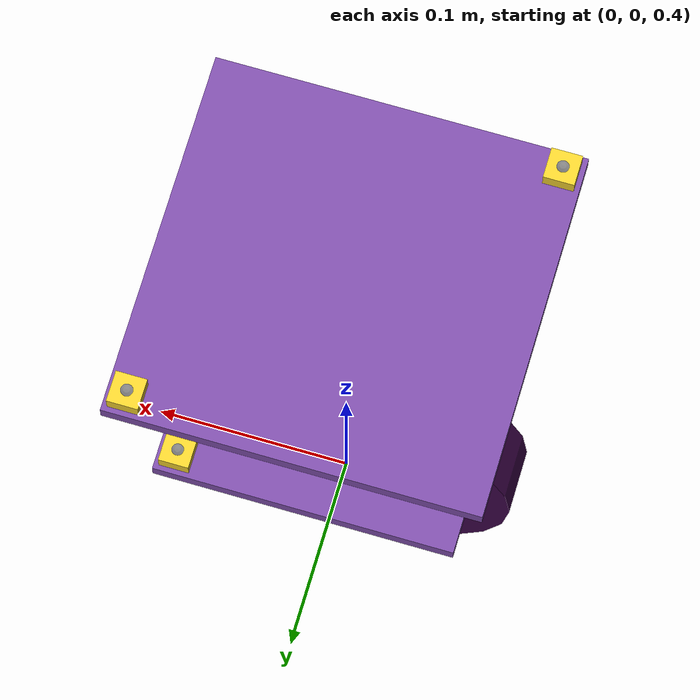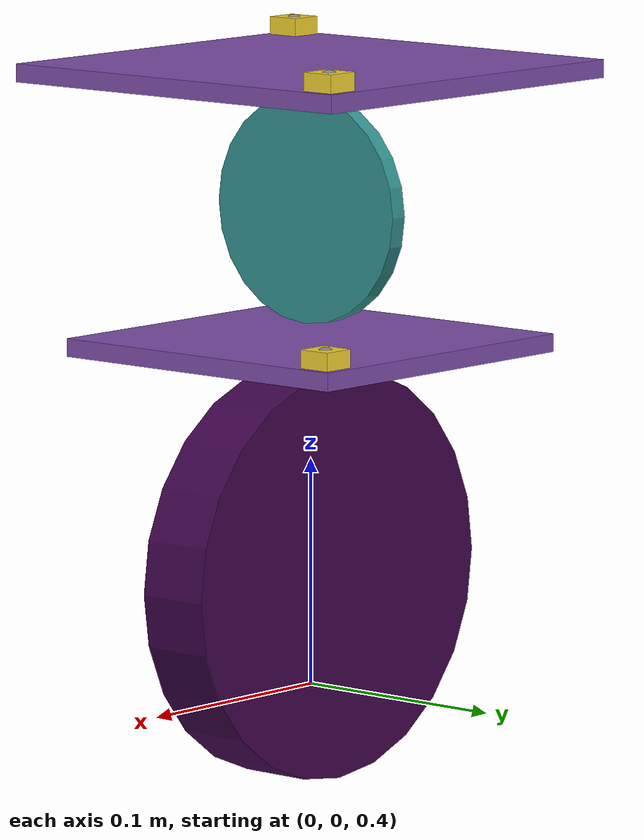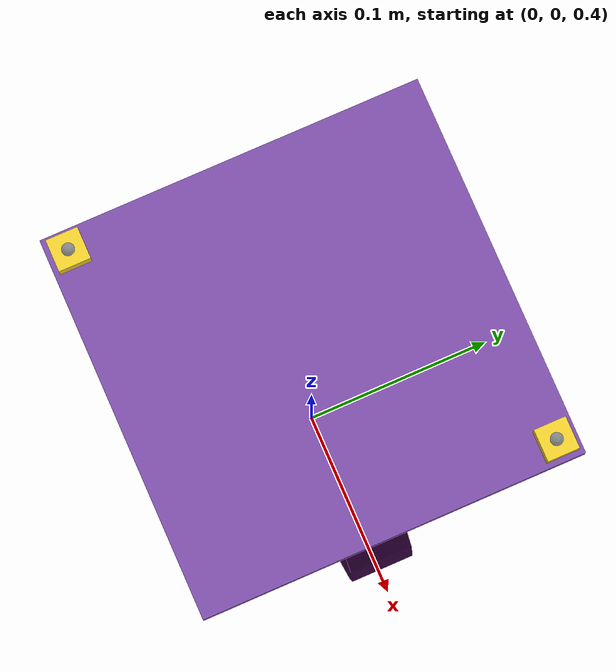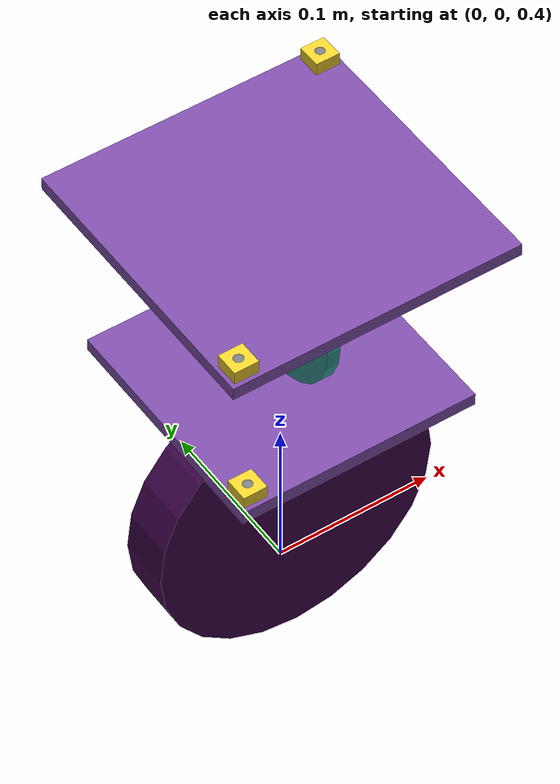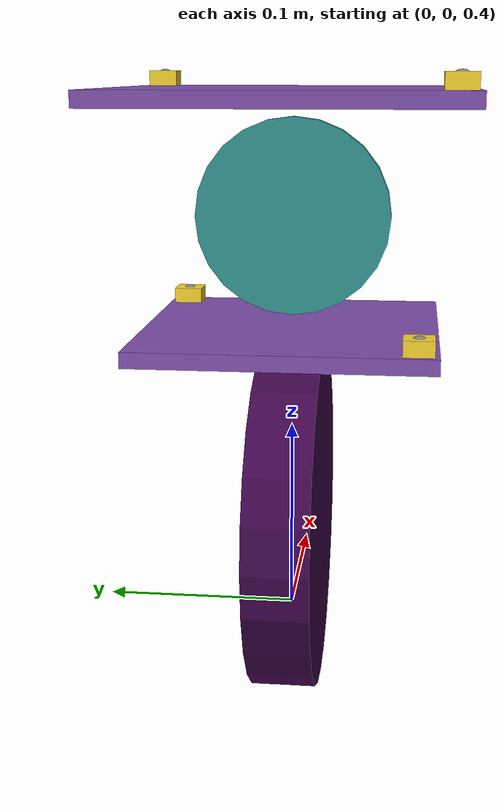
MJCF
<mujoco model="claptrap">
  <compiler angle="radian" />
  <worldbody>
    <body name="floating_base" pos="0 0 0.35" quat="1 0 0 0">
      <freejoint name="root_free" />
      <body name="base_footprint">
        <body name="base_link" pos="0 0 0.1">
          <body name="plane1" pos="0 0 0.1">
            <inertial pos="0 0 0" quat="0.707107 0 0 0.707107" mass="0.08" diaginertia="0.0003 0.0001504 0.0001504" />
            <geom size="0.075 0.004 0.075" quat="0.707107 0.707107 0 0" type="box" contype="0" conaffinity="0" group="1" density="0" rgba="0.491021 0.304987 0.665387 1" />
            <geom size="0.075 0.004 0.075" quat="0.707107 0.707107 0 0" type="box" rgba="0.491021 0.304987 0.665387 1" />
            <body name="imu_plane1_diag_a" pos="0.065 0.065 0.008">
              <inertial pos="0 0 0" quat="0.707107 0 0 0.707107" mass="0.005" diaginertia="2e-07 1e-07 1e-07" />
              <geom size="0.0075 0.004 0.0075" quat="0.707107 -0.707107 0 0" type="box" contype="0" conaffinity="0" group="1" density="0" rgba="0.95 0.82 0.18 1" />
              <geom size="0.0075 0.004 0.0075" quat="0.707107 -0.707107 0 0" type="box" rgba="0.95 0.82 0.18 1" />
              <site name="imu_plane1_diag_a_site" pos="0 0 0" size="0.005" />
            </body>
            <body name="imu_plane1_diag_b" pos="-0.065 -0.065 0.008">
              <inertial pos="0 0 0" quat="0.707107 0 0 0.707107" mass="0.005" diaginertia="2e-07 1e-07 1e-07" />
              <geom size="0.0075 0.004 0.0075" quat="0.707107 -0.707107 0 0" type="box" contype="0" conaffinity="0" group="1" density="0" rgba="0.95 0.82 0.18 1" />
              <geom size="0.0075 0.004 0.0075" quat="0.707107 -0.707107 0 0" type="box" rgba="0.95 0.82 0.18 1" />
              <site name="imu_plane1_diag_b_site" pos="0 0 0" size="0.005" />
            </body>
            <body name="plane2" pos="0 0 0.12">
              <inertial pos="0 0 0" quat="0.707107 0 0 0.707107" mass="0.08" diaginertia="0.000432 0.0002164 0.0002164" />
              <geom size="0.09 0.004 0.09" quat="0.707107 -0.707107 0 0" type="box" contype="0" conaffinity="0" group="1" density="0" rgba="0.491021 0.304987 0.665387 1" />
              <geom size="0.09 0.004 0.09" quat="0.707107 -0.707107 0 0" type="box" rgba="0.491021 0.304987 0.665387 1" />
              <body name="imu_plane2_diag_a" pos="0.08 0.08 0.008">
                <inertial pos="0 0 0" quat="0.707107 0 0 0.707107" mass="0.005" diaginertia="2e-07 1e-07 1e-07" />
                <geom size="0.0075 0.004 0.0075" quat="0.707107 -0.707107 0 0" type="box" contype="0" conaffinity="0" group="1" density="0" rgba="0.95 0.82 0.18 1" />
                <geom size="0.0075 0.004 0.0075" quat="0.707107 -0.707107 0 0" type="box" rgba="0.95 0.82 0.18 1" />
                <site name="imu_plane2_diag_a_site" pos="0 0 0" size="0.005" />
              </body>
              <body name="imu_plane2_diag_b" pos="-0.08 -0.08 0.008">
                <inertial pos="0 0 0" quat="0.707107 0 0 0.707107" mass="0.005" diaginertia="2e-07 1e-07 1e-07" />
                <geom size="0.0075 0.004 0.0075" quat="0.707107 -0.707107 0 0" type="box" contype="0" conaffinity="0" group="1" density="0" rgba="0.95 0.82 0.18 1" />
                <geom size="0.0075 0.004 0.0075" quat="0.707107 -0.707107 0 0" type="box" rgba="0.95 0.82 0.18 1" />
                <site name="imu_plane2_diag_b_site" pos="0 0 0" size="0.005" />
              </body>
            </body>
            <body name="link2" pos="0 0 0.06" quat="2.74201e-08 0.707107 -1.04736e-08 0.707107">
              <inertial pos="0 0 0" quat="0.5 0.5 -0.5 0.5" mass="0.08" diaginertia="0.0001 5.04e-05 5.04e-05" />
              <joint name="plane1_to_link2" pos="0 0 0" axis="0 0 1" actuatorfrcrange="-1000 1000" />
              <geom size="0.05 0.004" type="cylinder" contype="0" conaffinity="0" group="1" density="0" rgba="0.191202 0.571125 0.55834 1" />
              <geom size="0.05 0.004" type="cylinder" rgba="0.191202 0.571125 0.55834 1" />
            </body>
          </body>
          <body name="link1" quat="0.707107 0.707107 0 0">
            <inertial pos="0 0 0" quat="0.5 0.5 -0.5 0.5" mass="1.54" diaginertia="0.006237 0.003258 0.003258" />
            <joint name="base_link_to_link1" pos="0 0 0" axis="0 0 1" actuatorfrcrange="-1000 1000" />
            <geom size="0.09 0.0165" type="cylinder" contype="0" conaffinity="0" group="1" density="0" rgba="0.242281 0.0202886 0.291771 1" />
            <geom size="0.09 0.0165" type="cylinder" rgba="0.242281 0.0202886 0.291771 1" />
          </body>
        </body>
      </body>
    </body>
  </worldbody>
</mujoco>
